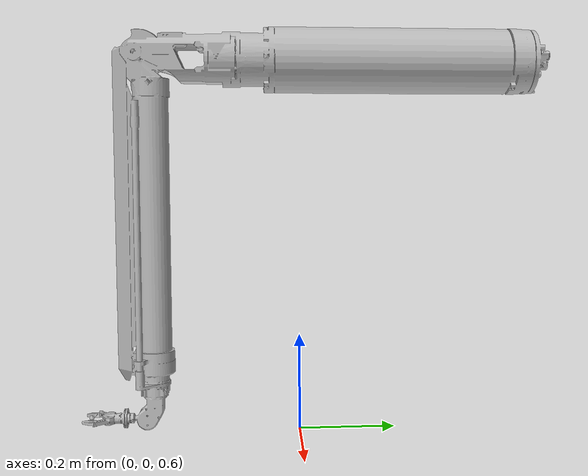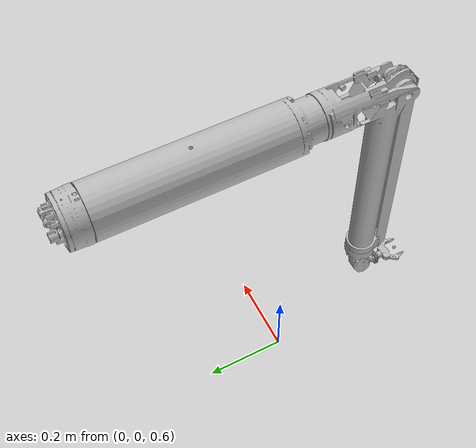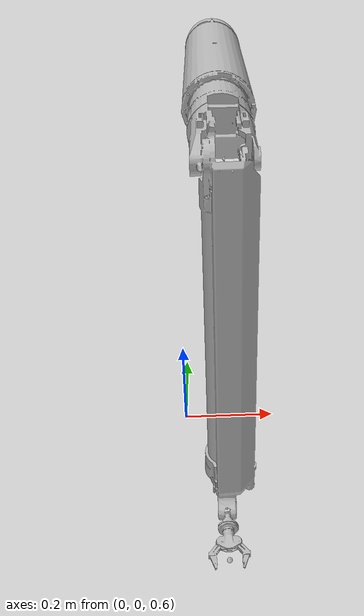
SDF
<?xml version="1.0" ?>
<sdf version="1.4">
  <model name="MT200">
    <static>true</static>
    <link name="link">
        <!--> Not necessary to declare inertia as the body is static<-->
      <collision name="collision">
        <geometry>
          <mesh>
            <uri>model://MT200_nuc_manipulator/meshes/Manipulator.dae</uri>
          </mesh>
        </geometry>
      </collision>
      <visual name="visual">
        <geometry>
          <mesh>
            <uri>model://MT200_nuc_manipulator/meshes/Manipulator.dae</uri>
            <scale>0.50 0.5 0.5</scale>
          </mesh>
        </geometry>
      </visual>
    </link>
  </model>
</sdf>
